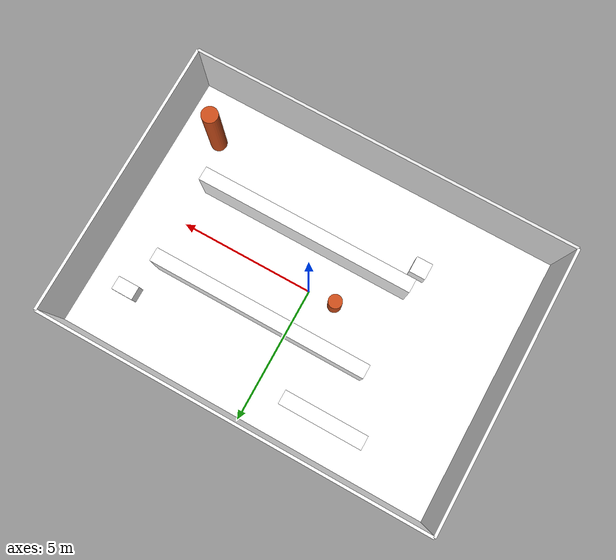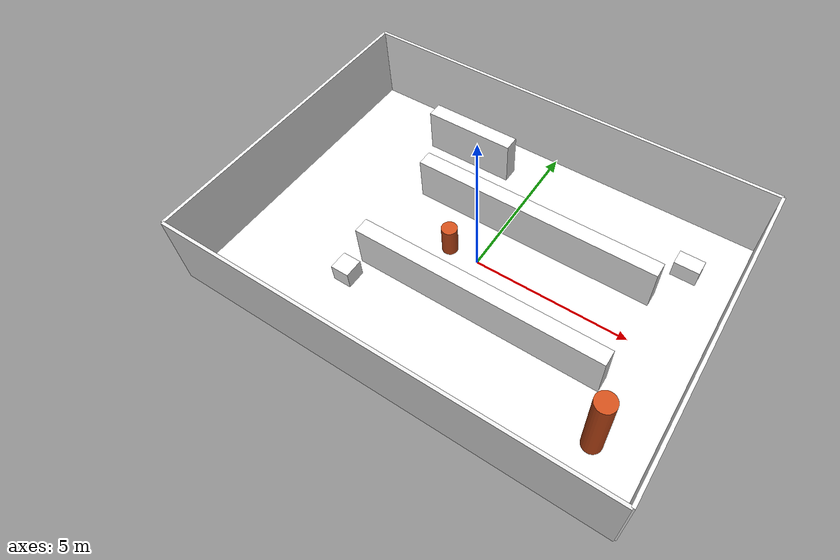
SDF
<?xml version="1.0"?>
<sdf version="1.8">
  <world name="retail_store">
    <physics name="fast" type="ignored">
      <max_step_size>0.004</max_step_size>
      <real_time_factor>1.0</real_time_factor>
    </physics>
    <plugin filename="ignition-gazebo-physics-system" name="ignition::gazebo::systems::Physics"/>
    <plugin filename="ignition-gazebo-user-commands-system" name="ignition::gazebo::systems::UserCommands"/>
    <plugin filename="ignition-gazebo-scene-broadcaster-system" name="ignition::gazebo::systems::SceneBroadcaster"/>
    <plugin filename="ignition-gazebo-sensors-system" name="ignition::gazebo::systems::Sensors">
      <render_engine>ogre2</render_engine>
    </plugin>
    <plugin filename="ignition-gazebo-imu-system" name="ignition::gazebo::systems::Imu"/>

    <gravity>0 0 -9.8</gravity>
    <scene><ambient>0.6 0.6 0.6 1</ambient><background>0.8 0.85 0.9 1</background><shadows>false</shadows></scene>
    <light type="directional" name="sun">
      <cast_shadows>false</cast_shadows><pose>0 0 10 0 0 0</pose>
      <diffuse>0.9 0.9 0.9 1</diffuse><specular>0.1 0.1 0.1 1</specular>
      <direction>-0.3 0.2 -1</direction>
    </light>

    <model name="floor"><static>true</static><pose>0 0 -0.05 0 0 0</pose>
      <link name="link">
        <collision name="c"><geometry><box><size>14.0 10.0 0.1</size></box></geometry></collision>
        <visual name="v"><geometry><box><size>14.0 10.0 0.1</size></box></geometry><material><diffuse>1 1 1 1</diffuse><specular>0.1 0.1 0.1 1</specular>
          <pbr><metal><albedo_map>model://retail_textures/textures/noise.png</albedo_map><roughness>0.9</roughness><metalness>0.0</metalness></metal></pbr></material></visual>
      </link></model>
    <model name="wall_north"><static>true</static><pose>0 5.0 1.25 0 0 0</pose>
      <link name="link">
        <collision name="c"><geometry><box><size>14.0 0.1 2.5</size></box></geometry></collision>
        <visual name="v"><geometry><box><size>14.0 0.1 2.5</size></box></geometry><material><diffuse>1 1 1 1</diffuse><specular>0.1 0.1 0.1 1</specular>
          <pbr><metal><albedo_map>model://retail_textures/textures/noise.png</albedo_map><roughness>0.9</roughness><metalness>0.0</metalness></metal></pbr></material></visual>
      </link></model>
    <model name="wall_south"><static>true</static><pose>0 -5.0 1.25 0 0 0</pose>
      <link name="link">
        <collision name="c"><geometry><box><size>14.0 0.1 2.5</size></box></geometry></collision>
        <visual name="v"><geometry><box><size>14.0 0.1 2.5</size></box></geometry><material><ambient>0.9 0.9 0.9 1</ambient><diffuse>0.9 0.9 0.9 1</diffuse></material></visual>
      </link></model>
    <model name="wall_east"><static>true</static><pose>7.0 0 1.25 0 0 0</pose>
      <link name="link">
        <collision name="c"><geometry><box><size>0.1 10.0 2.5</size></box></geometry></collision>
        <visual name="v"><geometry><box><size>0.1 10.0 2.5</size></box></geometry><material><diffuse>1 1 1 1</diffuse><specular>0.1 0.1 0.1 1</specular>
          <pbr><metal><albedo_map>model://retail_textures/textures/noise.png</albedo_map><roughness>0.9</roughness><metalness>0.0</metalness></metal></pbr></material></visual>
      </link></model>
    <model name="wall_west"><static>true</static><pose>-7.0 0 1.25 0 0 0</pose>
      <link name="link">
        <collision name="c"><geometry><box><size>0.1 10.0 2.5</size></box></geometry></collision>
        <visual name="v"><geometry><box><size>0.1 10.0 2.5</size></box></geometry><material><diffuse>1 1 1 1</diffuse><specular>0.1 0.1 0.1 1</specular>
          <pbr><metal><albedo_map>model://retail_textures/textures/noise.png</albedo_map><roughness>0.9</roughness><metalness>0.0</metalness></metal></pbr></material></visual>
      </link></model>
    <model name="shelf_a"><static>true</static><pose>1.0 1.6 0.75 0 0 0</pose>
      <link name="link">
        <collision name="c"><geometry><box><size>8.0 0.5 1.5</size></box></geometry></collision>
        <visual name="v"><geometry><box><size>8.0 0.5 1.5</size></box></geometry><material><diffuse>1 1 1 1</diffuse><specular>0.1 0.1 0.1 1</specular>
          <pbr><metal><albedo_map>model://retail_textures/textures/noise.png</albedo_map><roughness>0.9</roughness><metalness>0.0</metalness></metal></pbr></material></visual>
      </link></model>
    <model name="shelf_b"><static>true</static><pose>1.0 -1.6 0.75 0 0 0</pose>
      <link name="link">
        <collision name="c"><geometry><box><size>8.0 0.5 1.5</size></box></geometry></collision>
        <visual name="v"><geometry><box><size>8.0 0.5 1.5</size></box></geometry><material><diffuse>1 1 1 1</diffuse><specular>0.1 0.1 0.1 1</specular>
          <pbr><metal><albedo_map>model://retail_textures/textures/noise.png</albedo_map><roughness>0.9</roughness><metalness>0.0</metalness></metal></pbr></material></visual>
      </link></model>
    <model name="shelf_c"><static>true</static><pose>-2.5 3.6 0.75 0 0 0</pose>
      <link name="link">
        <collision name="c"><geometry><box><size>3.0 0.5 1.5</size></box></geometry></collision>
        <visual name="v"><geometry><box><size>3.0 0.5 1.5</size></box></geometry><material><diffuse>1 1 1 1</diffuse><specular>0.1 0.1 0.1 1</specular>
          <pbr><metal><albedo_map>model://retail_textures/textures/noise.png</albedo_map><roughness>0.9</roughness><metalness>0.0</metalness></metal></pbr></material></visual>
      </link></model>
    <model name="crate_1"><static>true</static><pose>-3.0 -2.5 0.3 0 0 0</pose>
      <link name="link">
        <collision name="c"><geometry><box><size>0.6 0.6 0.6</size></box></geometry></collision>
        <visual name="v"><geometry><box><size>0.6 0.6 0.6</size></box></geometry><material><diffuse>1 1 1 1</diffuse><specular>0.1 0.1 0.1 1</specular>
          <pbr><metal><albedo_map>model://retail_textures/textures/noise.png</albedo_map><roughness>0.9</roughness><metalness>0.0</metalness></metal></pbr></material></visual>
      </link></model>
    <model name="crate_2"><static>true</static><pose>5.5 3.0 0.3 0 0 0</pose>
      <link name="link">
        <collision name="c"><geometry><box><size>0.8 0.5 0.6</size></box></geometry></collision>
        <visual name="v"><geometry><box><size>0.8 0.5 0.6</size></box></geometry><material><diffuse>1 1 1 1</diffuse><specular>0.1 0.1 0.1 1</specular>
          <pbr><metal><albedo_map>model://retail_textures/textures/noise.png</albedo_map><roughness>0.9</roughness><metalness>0.0</metalness></metal></pbr></material></visual>
      </link></model>
    <model name="pillar_1"><static>true</static><pose>-1.0 0.0 0.5 0 0 0</pose>
      <link name="link">
        <collision name="c"><geometry><cylinder><radius>0.25</radius><length>1.0</length></cylinder></geometry></collision>
        <visual name="v"><geometry><cylinder><radius>0.25</radius><length>1.0</length></cylinder></geometry>
          <material><ambient>0.8 0.3 0.1 1</ambient><diffuse>0.8 0.3 0.1 1</diffuse></material></visual>
      </link></model>
    <model name="pillar_2"><static>true</static><pose>5.5 -3.2 1.25 0 0 0</pose>
      <link name="link">
        <collision name="c"><geometry><cylinder><radius>0.3</radius><length>2.5</length></cylinder></geometry></collision>
        <visual name="v"><geometry><cylinder><radius>0.3</radius><length>2.5</length></cylinder></geometry>
          <material><ambient>0.8 0.3 0.1 1</ambient><diffuse>0.8 0.3 0.1 1</diffuse></material></visual>
      </link></model>
  </world>
</sdf>
